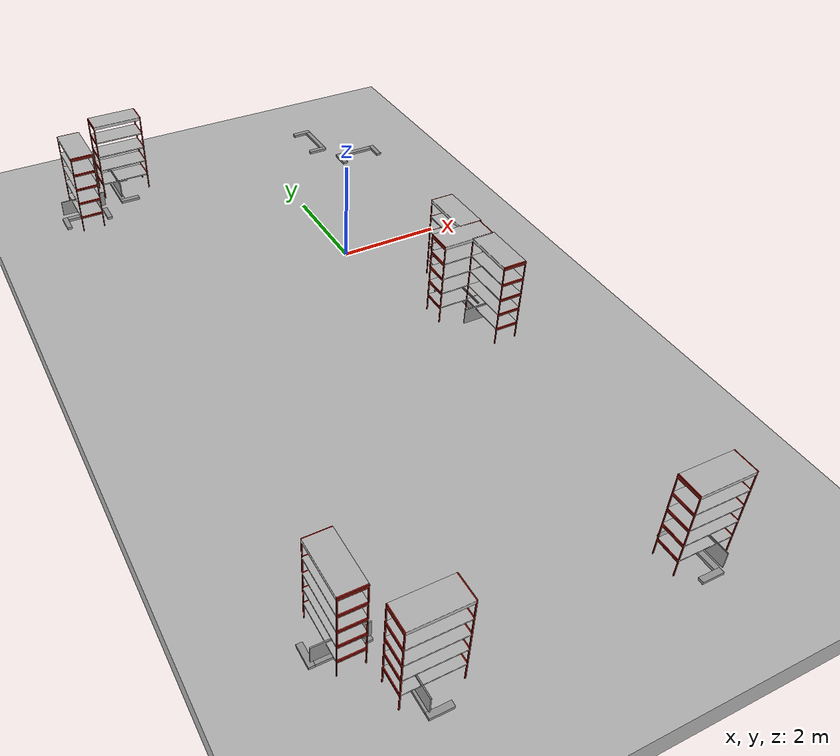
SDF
<sdf version="1.6">
 <world name="default">
  <light name="light0" type="directional">
   <pose>0 -18.818 8 0.75 -0 0</pose>
   <diffuse>0.5 0.5 0.5 1</diffuse>
   <specular>0.1 0.1 0.1 1</specular>
   <direction>0.1 0.1 -0.9</direction>
   <attenuation>
    <range>20</range>
    <constant>0.5</constant>
    <linear>0.01</linear>
    <quadratic>0.001</quadratic>
   </attenuation>
   <cast_shadows>0</cast_shadows>
  </light>
  <light name="light3" type="directional">
   <pose>3.9239 1.64974 4 0 1.2 0</pose>
   <diffuse>0.5 0.5 0.5 1</diffuse>
   <specular>0.1 0.1 0.1 1</specular>
   <direction>0.1 0.1 -0.9</direction>
   <attenuation>
    <range>20</range>
    <constant>0.5</constant>
    <linear>0.01</linear>
    <quadratic>0.001</quadratic>
   </attenuation>
   <cast_shadows>0</cast_shadows>
  </light>
  <light name="light5" type="directional">
   <pose>0.454419 12.4783 5 -0.8 0 0</pose>
   <diffuse>0.5 0.5 0.5 1</diffuse>
   <specular>0.1 0.1 0.1 1</specular>
   <direction>0.1 0.1 -0.9</direction>
   <attenuation>
    <range>20</range>
    <constant>0.5</constant>
    <linear>0.01</linear>
    <quadratic>0.001</quadratic>
   </attenuation>
   <cast_shadows>0</cast_shadows>
  </light>
  <scene>
   <shadows>false</shadows>
   <ambient>0.5 0.5 0.5 1.0</ambient>
   <grid>false</grid>
   <sky><time>22</time><sunrise>20</sunrise><sunset>21</sunset><clouds><humidity>0</humidity></clouds></sky>
  </scene>
  <include><uri>model://ground_plane</uri></include>
  <include><uri>model://moon_surface</uri><pose>0 0 -0.25 0 0 0</pose></include>
  <include><uri>model://rack_base</uri><name>rack_base</name><pose>1.421 4.35 0.05 0 -0 -1.57</pose></include>
  <include><uri>model://rack</uri><name>rack1</name><pose>1.05 -2.455 0.0 0 -0 3.14</pose></include>
  <include><uri>model://rack</uri><name>rack2</name><pose>1.35 -1.755 0.0 0 0 1.57</pose></include>
  <include><uri>model://rack</uri><name>rack3</name><pose>1.35 -3.155 0.0 0 0 -1.57</pose></include>
  <include><uri>model://rack</uri><name>rack4</name><pose>0.99 -8.86 0.1 0 -0 3.14</pose></include>
  <include><uri>model://rack</uri><name>rack5</name><pose>-3.46 -8.89 0.1 0 -0 0.0</pose></include>
  <include><uri>model://rack</uri><name>rack6</name><pose>-4.22 -7.85 0.1 0 -0 1.57</pose></include>
  <include><uri>model://rack</uri><name>rack7</name><pose>-4.28 3.52 0.1 0 -0 -1.57</pose></include>
  <include><uri>model://rack</uri><name>rack8</name><pose>-3.24 4.28 0.1 0 -0 0.0</pose></include>
  <plugin name="gazebo_link_ur5_attacher" filename="libgazebo_link_ur5_attacher.so"/>
  <plugin name="gazebo_ros_state" filename="libgazebo_ros_state.so">
   <ros><namespace>/_makeit</namespace></ros>
   <update_rate>1.0</update_rate>
  </plugin>
 </world>
</sdf>

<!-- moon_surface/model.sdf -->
<sdf version="1.6">
  <model name="moon_surface">
    <static>true</static>

    <link name="link">
      <pose>0 0 0.003 0 0 0</pose>

      <visual name="visual1">
        <cast_shadows>false</cast_shadows>
        <geometry>
          <mesh><uri>model://moon_surface/meshes/moon_surface.dae</uri></mesh>
        </geometry>
        <material>
          <shader type='pixel'/>
        </material>
        <pose>0 0 0 0 0 0</pose>
        <transparency>0</transparency>
      </visual>
    </link>
  </model>
</sdf>

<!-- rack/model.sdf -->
<sdf version='1.7'>
  <model name='rack'>
    <link name='link'>
      <inertial>
        <pose>0 0 0 0 -0 0</pose>
        <mass>1.87</mass>
        <inertia>
          <ixx>0.01857</ixx>
          <ixy>0</ixy>
          <ixz>0</ixz>
          <iyy>0.015598</iyy>
          <iyz>0</iyz>
          <izz>0.00305</izz>
        </inertia>
      </inertial>
      <self_collide>0</self_collide>
      <enable_wind>0</enable_wind>
      <kinematic>0</kinematic>
      <pose>0 0 0 0 -0 0</pose>
      <gravity>1</gravity>
      <visual name='visual1'>
        <cast_shadows>0</cast_shadows>
        <geometry>
          <mesh>
            <uri>model://rack/meshes/rack.dae</uri>
          </mesh>
        </geometry>
        <material>
          <shader type='pixel'>
            <normal_map>__default__</normal_map>
          </shader>
          <emissive>0 0 0 1</emissive>
        </material>
        <pose>0 0 0 0 -0 0</pose>
        <transparency>0</transparency>
        <pose>0 0 0 0 -0 0</pose>
        <transparency>0</transparency>
      </visual>
      <visual name='visual_2'>
        <cast_shadows>0</cast_shadows>
        <geometry>
          <box>
            <size>0.02 0.9 0.31</size>
          </box>
        </geometry>
        <material>
          <lighting>1</lighting>
          <script>
            <uri>file://media/materials/scripts/gazebo.material</uri>
            <name>Gazebo/Grey</name>
          </script>
          <shader type='pixel'>
            <normal_map>__default__</normal_map>
          </shader>
          <ambient>0.3 0.3 0.3 1</ambient>
          <diffuse>0.7 0.7 0.7 1</diffuse>
          <specular>0.01 0.01 0.01 1</specular>
          <emissive>0 0 0 1</emissive>
        </material>
        <pose>-0.185 0 0.22 0 -0 0</pose>
        <transparency>0</transparency>
      </visual>

      <collision name='collision_7'>
        <laser_retro>0</laser_retro>
        <max_contacts>10</max_contacts>
        <pose>0 0 0.36 0 1.57 1.57</pose>
        <geometry>
          <box>
            <size>0.05 0.35 0.91</size>
          </box>
        </geometry>
        <surface>
          <friction>
            <ode>
              <mu>1</mu>
              <mu2>1</mu2>
              <fdir1>0 0 0</fdir1>
              <slip1>0</slip1>
              <slip2>0</slip2>
            </ode>
            <torsional>
              <coefficient>1</coefficient>
              <patch_radius>0</patch_radius>
              <surface_radius>0</surface_radius>
              <use_patch_radius>1</use_patch_radius>
              <ode>
                <slip>0</slip>
              </ode>
            </torsional>
          </friction>
          <bounce>
            <restitution_coefficient>0</restitution_coefficient>
            <threshold>1e+06</threshold>
          </bounce>
          <contact>
            <collide_without_contact>0</collide_without_contact>
            <collide_without_contact_bitmask>1</collide_without_contact_bitmask>
            <collide_bitmask>1</collide_bitmask>
            <ode>
              <soft_cfm>0</soft_cfm>
              <soft_erp>0.2</soft_erp>
              <kp>1e15</kp>
              <kd>1e13</kd>
              <max_vel>0.01</max_vel>
              <min_depth>0</min_depth>
            </ode>
            <bullet>
              <split_impulse>1</split_impulse>
              <split_impulse_penetration_threshold>-0.01</split_impulse_penetration_threshold>
              <soft_cfm>0</soft_cfm>
              <soft_erp>0.2</soft_erp>
              <kp>1e+13</kp>
              <kd>1</kd>
            </bullet>
          </contact>
        </surface>
      </collision>

      <collision name='collision_6'>
        <laser_retro>0</laser_retro>
        <max_contacts>10</max_contacts>
        <pose>0 0 0.725 0 1.57 1.57</pose>
        <geometry>
          <box>
            <size>0.05 0.35 0.91</size>
          </box>
        </geometry>
        <surface>
          <friction>
            <ode>
              <mu>1</mu>
              <mu2>1</mu2>
              <fdir1>0 0 0</fdir1>
              <slip1>0</slip1>
              <slip2>0</slip2>
            </ode>
            <torsional>
              <coefficient>1</coefficient>
              <patch_radius>0</patch_radius>
              <surface_radius>0</surface_radius>
              <use_patch_radius>1</use_patch_radius>
              <ode>
                <slip>0</slip>
              </ode>
            </torsional>
          </friction>
          <bounce>
            <restitution_coefficient>0</restitution_coefficient>
            <threshold>1e+06</threshold>
          </bounce>
          <contact>
            <collide_without_contact>0</collide_without_contact>
            <collide_without_contact_bitmask>1</collide_without_contact_bitmask>
            <collide_bitmask>1</collide_bitmask>
            <ode>
              <soft_cfm>0</soft_cfm>
              <soft_erp>0.2</soft_erp>
              <kp>1e15</kp>
              <kd>1e13</kd>
              <max_vel>0.01</max_vel>
              <min_depth>0</min_depth>
            </ode>
            <bullet>
              <split_impulse>1</split_impulse>
              <split_impulse_penetration_threshold>-0.01</split_impulse_penetration_threshold>
              <soft_cfm>0</soft_cfm>
              <soft_erp>0.2</soft_erp>
              <kp>1e+13</kp>
              <kd>1</kd>
            </bullet>
          </contact>
        </surface>
      </collision>

      <collision name='collision_5'>
        <laser_retro>0</laser_retro>
        <max_contacts>10</max_contacts>
        <pose>0 0 1.09 0 1.57 1.57</pose>
        <geometry>
          <box>
            <size>0.05 0.35 0.91</size>
          </box>
        </geometry>
        <surface>
          <friction>
            <ode>
              <mu>1</mu>
              <mu2>1</mu2>
              <fdir1>0 0 0</fdir1>
              <slip1>0</slip1>
              <slip2>0</slip2>
            </ode>
            <torsional>
              <coefficient>1</coefficient>
              <patch_radius>0</patch_radius>
              <surface_radius>0</surface_radius>
              <use_patch_radius>1</use_patch_radius>
              <ode>
                <slip>0</slip>
              </ode>
            </torsional>
          </friction>
          <bounce>
            <restitution_coefficient>0</restitution_coefficient>
            <threshold>1e+06</threshold>
          </bounce>
          <contact>
            <collide_without_contact>0</collide_without_contact>
            <collide_without_contact_bitmask>1</collide_without_contact_bitmask>
            <collide_bitmask>1</collide_bitmask>
            <ode>
              <soft_cfm>0</soft_cfm>
              <soft_erp>0.2</soft_erp>
              <kp>1e15</kp>
              <kd>1e13</kd>
              <max_vel>0.01</max_vel>
              <min_depth>0</min_depth>
            </ode>
            <bullet>
              <split_impulse>1</split_impulse>
              <split_impulse_penetration_threshold>-0.01</split_impulse_penetration_threshold>
              <soft_cfm>0</soft_cfm>
              <soft_erp>0.2</soft_erp>
              <kp>1e+13</kp>
              <kd>1</kd>
            </bullet>
          </contact>
        </surface>
      </collision>

      <collision name='collision_3'>
        <laser_retro>0</laser_retro>
        <max_contacts>10</max_contacts>
        <pose>0 0 1.455 0 1.57 1.57</pose>
        <geometry>
          <box>
            <size>0.05 0.35 0.91</size>
          </box>
        </geometry>
        <surface>
          <friction>
            <ode>
              <mu>1</mu>
              <mu2>1</mu2>
              <fdir1>0 0 0</fdir1>
              <slip1>0</slip1>
              <slip2>0</slip2>
            </ode>
            <torsional>
              <coefficient>1</coefficient>
              <patch_radius>0</patch_radius>
              <surface_radius>0</surface_radius>
              <use_patch_radius>1</use_patch_radius>
              <ode>
                <slip>0</slip>
              </ode>
            </torsional>
          </friction>
          <bounce>
            <restitution_coefficient>0</restitution_coefficient>
            <threshold>1e+06</threshold>
          </bounce>
          <contact>
            <collide_without_contact>0</collide_without_contact>
            <collide_without_contact_bitmask>1</collide_without_contact_bitmask>
            <collide_bitmask>1</collide_bitmask>
            <ode>
              <soft_cfm>0</soft_cfm>
              <soft_erp>0.2</soft_erp>
              <kp>1e15</kp>
              <kd>1e13</kd>
              <max_vel>0.01</max_vel>
              <min_depth>0</min_depth>
            </ode>
            <bullet>
              <split_impulse>1</split_impulse>
              <split_impulse_penetration_threshold>-0.01</split_impulse_penetration_threshold>
              <soft_cfm>0</soft_cfm>
              <soft_erp>0.2</soft_erp>
              <kp>1e+13</kp>
              <kd>1</kd>
            </bullet>
          </contact>
        </surface>
      </collision>

      <collision name='collision_1'>
        <laser_retro>0</laser_retro>
        <max_contacts>10</max_contacts>
        <pose>0 0.43 0.73 0 -0 1.57</pose>
        <geometry>
          <box>
            <size>0.05 0.36 1.46</size>
          </box>
        </geometry>
        <surface>
          <friction>
            <ode>
              <mu>1</mu>
              <mu2>1</mu2>
              <fdir1>0 0 0</fdir1>
              <slip1>0</slip1>
              <slip2>0</slip2>
            </ode>
            <torsional>
              <coefficient>1</coefficient>
              <patch_radius>0</patch_radius>
              <surface_radius>0</surface_radius>
              <use_patch_radius>1</use_patch_radius>
              <ode>
                <slip>0</slip>
              </ode>
            </torsional>
          </friction>
          <bounce>
            <restitution_coefficient>0</restitution_coefficient>
            <threshold>1e+06</threshold>
          </bounce>
          <contact>
            <collide_without_contact>0</collide_without_contact>
            <collide_without_contact_bitmask>1</collide_without_contact_bitmask>
            <collide_bitmask>1</collide_bitmask>
            <ode>
              <soft_cfm>0</soft_cfm>
              <soft_erp>0.2</soft_erp>
              <kp>1e15</kp>
              <kd>1e13</kd>
              <max_vel>0.01</max_vel>
              <min_depth>0</min_depth>
            </ode>
            <bullet>
              <split_impulse>1</split_impulse>
              <split_impulse_penetration_threshold>-0.01</split_impulse_penetration_threshold>
              <soft_cfm>0</soft_cfm>
              <soft_erp>0.2</soft_erp>
              <kp>1e+13</kp>
              <kd>1</kd>
            </bullet>
          </contact>
        </surface>
      </collision>

      <collision name='collision_2'>
        <laser_retro>0</laser_retro>
        <max_contacts>10</max_contacts>
        <pose>0 -0.43 0.73 0 -0 1.57</pose>
        <geometry>
          <box>
            <size>0.05 0.36 1.46</size>
          </box>
        </geometry>
        <surface>
          <friction>
            <ode>
              <mu>1</mu>
              <mu2>1</mu2>
              <fdir1>0 0 0</fdir1>
              <slip1>0</slip1>
              <slip2>0</slip2>
            </ode>
            <torsional>
              <coefficient>1</coefficient>
              <patch_radius>0</patch_radius>
              <surface_radius>0</surface_radius>
              <use_patch_radius>1</use_patch_radius>
              <ode>
                <slip>0</slip>
              </ode>
            </torsional>
          </friction>
          <bounce>
            <restitution_coefficient>0</restitution_coefficient>
            <threshold>1e+06</threshold>
          </bounce>
          <contact>
            <collide_without_contact>0</collide_without_contact>
            <collide_without_contact_bitmask>1</collide_without_contact_bitmask>
            <collide_bitmask>1</collide_bitmask>
            <ode>
              <soft_cfm>0</soft_cfm>
              <soft_erp>0.2</soft_erp>
              <kp>1e15</kp>
              <kd>1e13</kd>
              <max_vel>0.01</max_vel>
              <min_depth>0</min_depth>
            </ode>
            <bullet>
              <split_impulse>1</split_impulse>
              <split_impulse_penetration_threshold>-0.01</split_impulse_penetration_threshold>
              <soft_cfm>0</soft_cfm>
              <soft_erp>0.2</soft_erp>
              <kp>1e+13</kp>
              <kd>1</kd>
            </bullet>
          </contact>
        </surface>
      </collision>

      <collision name='collision'>
        <laser_retro>0</laser_retro>
        <max_contacts>10</max_contacts>
        <pose>-0.185 0 0.22 0 -0 0</pose>
        <geometry>
          <box>
            <size>0.02 0.9 0.31</size>
          </box>
        </geometry>
        <surface>
          <friction>
            <ode>
              <mu>1</mu>
              <mu2>1</mu2>
              <fdir1>0 0 0</fdir1>
              <slip1>0</slip1>
              <slip2>0</slip2>
            </ode>
            <torsional>
              <coefficient>1</coefficient>
              <patch_radius>0</patch_radius>
              <surface_radius>0</surface_radius>
              <use_patch_radius>1</use_patch_radius>
              <ode>
                <slip>0</slip>
              </ode>
            </torsional>
          </friction>
          <bounce>
            <restitution_coefficient>0</restitution_coefficient>
            <threshold>1e+06</threshold>
          </bounce>
          <contact>
            <collide_without_contact>0</collide_without_contact>
            <collide_without_contact_bitmask>1</collide_without_contact_bitmask>
            <collide_bitmask>1</collide_bitmask>
            <ode>
              <soft_cfm>0</soft_cfm>
              <soft_erp>0.2</soft_erp>
              <kp>1e15</kp>
              <kd>1e13</kd>
              <max_vel>0.01</max_vel>
              <min_depth>0</min_depth>
            </ode>
            <bullet>
              <split_impulse>1</split_impulse>
              <split_impulse_penetration_threshold>-0.01</split_impulse_penetration_threshold>
              <soft_cfm>0</soft_cfm>
              <soft_erp>0.2</soft_erp>
              <kp>1e+13</kp>
              <kd>1</kd>
            </bullet>
          </contact>
        </surface>
      </collision>

    </link>
    <static>0</static>
    <allow_auto_disable>1</allow_auto_disable>
  </model>
</sdf>
